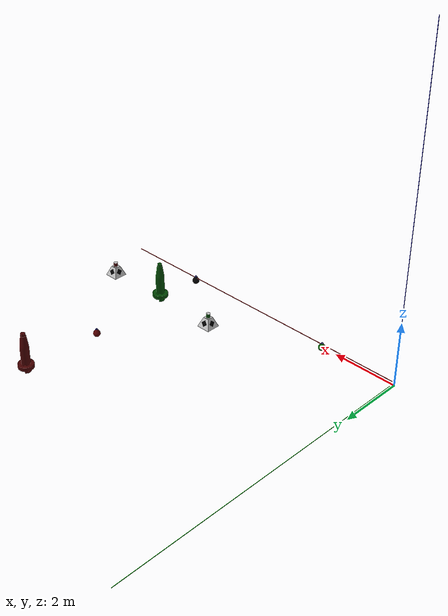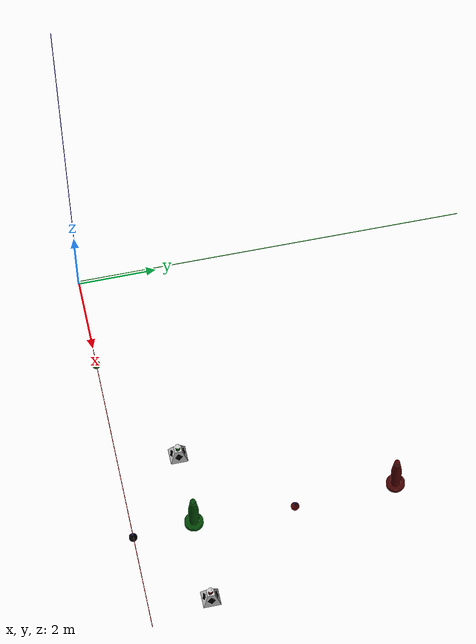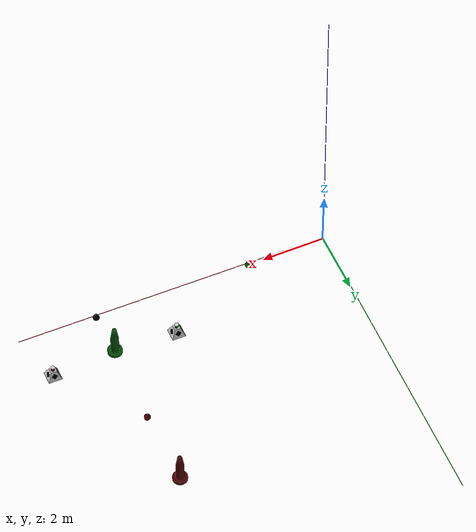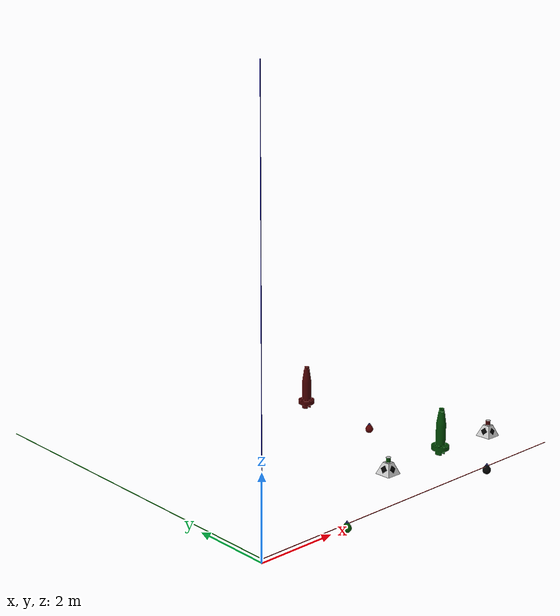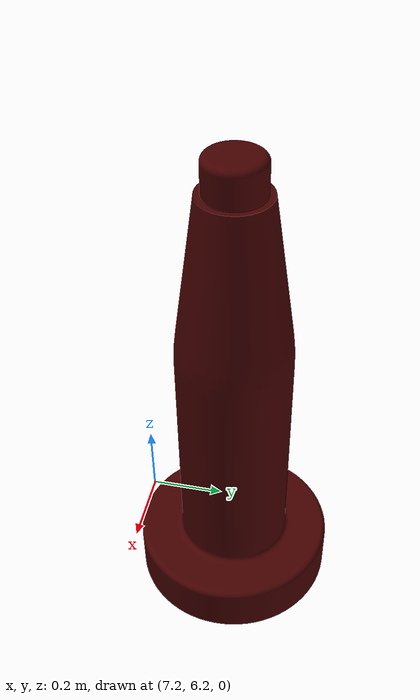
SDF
<sdf version="1.6">
 <world name="aquatonomous_course">
  <plugin filename="gz-sim-physics-system" name="gz::sim::systems::Physics"/>
  <plugin filename="gz-sim-sensors-system" name="gz::sim::systems::Sensors">
   <render_engine>ogre2</render_engine>
   <background_color>0.8 0.8 0.8</background_color>
  </plugin>
  <plugin filename="gz-sim-scene-broadcaster-system" name="gz::sim::systems::SceneBroadcaster"/>
  <plugin filename="gz-sim-user-commands-system" name="gz::sim::systems::UserCommands"/>
  <plugin filename="gz-sim-imu-system" name="gz::sim::systems::Imu"/>
  <scene><ambient>1.0 1.0 1.0</ambient><background>0.8 0.8 0.8</background></scene>
  <light type="directional" name="sun">
   <pose>0 0 10 0 0 0</pose>
   <diffuse>0.8 0.8 0.8 1</diffuse>
   <specular>0.6 0.6 0.6 1</specular>
   <direction>-0.5 0.1 -0.9</direction>
  </light>
  <model name="axes">
   <static>1</static>
   <link name="link">
    <visual name="r">
     <cast_shadows>0</cast_shadows>
     <pose>5 0 0.1 0 0 0</pose>
     <geometry><box><size>10 0.01 0.01</size></box></geometry>
     <material>
      <ambient>1 0 0 1</ambient>
      <diffuse>1 0 0 1</diffuse>
      <emissive>1 0 0 1</emissive>
      <specular>0.5 0.5 0.5 1</specular>
     </material>
    </visual>
    <visual name="g">
     <cast_shadows>0</cast_shadows>
     <pose>0 5 0.1 0 0 0</pose>
     <geometry><box><size>0.01 10 0.01</size></box></geometry>
     <material>
      <ambient>0 1 0 1</ambient>
      <diffuse>0 1 0 1</diffuse>
      <emissive>0 1 0 1</emissive>
      <specular>0.5 0.5 0.5 1</specular>
     </material>
    </visual>
    <visual name="b">
     <cast_shadows>0</cast_shadows>
     <pose>0 0 5.1 0 0 0</pose>
     <geometry><box><size>0.01 0.01 10</size></box></geometry>
     <material>
      <ambient>0 0 1 1</ambient>
      <diffuse>0 0 1 1</diffuse>
      <emissive>0 0 1 1</emissive>
      <specular>0.5 0.5 0.5 1</specular>
     </material>
    </visual>
   </link>
  </model>
  <include><name>green1</name><pose>7.50 1.50 0 0 0 0</pose><uri>model://GreenSurMark</uri></include>
  <include><name>greendes1</name><pose>7.50 0 0 0 0 0</pose><uri>model://BlackRopehold</uri></include>
  <include><name>gregden1</name><pose>5.50 1.50 0 0 0 0</pose><uri>model://ColourIndicatorGreen</uri></include>
  <include><name>greenfsd1</name><pose>9.50 1.50 0 0 0 0</pose><uri>model://ColourIndicatorRed</uri></include>
  <include><name>greesdfndes1</name><pose>7.50 4 0 0 0 0</pose><uri>model://RedRopehold</uri></include>
  <include><name>greeghjndes1</name><pose>2.50 0 0 0 0 0</pose><uri>model://GreenRopehold</uri></include>
  <include><name>green661</name><pose>7.50 6.50 0 0 0 0</pose><uri>model://RedSurMark</uri></include>
 </world>
</sdf>

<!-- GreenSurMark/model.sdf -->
<sdf version='1.6'>
  <model name='Green Surmark Buoy'>
    <static>false</static>
    <plugin
        filename="gz-waves1-hydrodynamics-system"
        name="gz::sim::systems::Hydrodynamics">
    </plugin>
    <link name="base_link">
      <visual name="visual">
        <pose>0 0 0 0 0 0</pose>
        <geometry>
          <mesh>
            <uri>model://GreenSurMark/meshes/GreenSurmark.dae</uri>
            <scale>0.001 0.001 0.001</scale>
          </mesh>
        </geometry>
      </visual>
      <collision name="collision">
        <pose>0 0 0 0 0 0</pose>
        <geometry>
          <sphere>
            <radius>0.25</radius>
          </sphere>
        </geometry>
      </collision>
      <inertial>
        <pose>0 0 0 0 0 0</pose>
        <mass>50</mass>
        <inertia>
          <ixx>0.1636</ixx>
          <ixy>0.0</ixy>
          <ixz>0.0</ixz>
          <iyy>0.1636</iyy>
          <iyz>0.0</iyz>
          <izz>0.1636</izz>
        </inertia>
      </inertial>
    </link>
  </model>
</sdf>

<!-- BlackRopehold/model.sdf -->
<sdf version='1.6'>
  <model name='Black Ropehold Buoy'>
    <static>false</static>
    <plugin
        filename="gz-waves1-hydrodynamics-system"
        name="gz::sim::systems::Hydrodynamics">
    </plugin>
    <link name="base_link">
      <visual name="visual">
        <pose>0 0 0 0 0 0</pose>
        <geometry>
          <mesh>
            <uri>model://BlackRopehold/meshes/BlackRopehold.dae</uri>
            <scale>0.001 0.001 0.001</scale>
          </mesh>
        </geometry>
      </visual>
      <collision name="collision">
        <pose>0 0 0 0 0 0</pose>
        <geometry>
          <sphere>
            <radius>0.25</radius>
          </sphere>
        </geometry>
      </collision>
      <inertial>
        <pose>0 0 0 0 0 0</pose>
        <mass>20</mass>
        <inertia>
          <ixx>0.1636</ixx>
          <ixy>0.0</ixy>
          <ixz>0.0</ixz>
          <iyy>0.1636</iyy>
          <iyz>0.0</iyz>
          <izz>0.1636</izz>
        </inertia>
      </inertial>
    </link>
  </model>
</sdf>

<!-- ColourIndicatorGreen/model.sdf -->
<sdf version='1.6'>
  <model name='Green Colour Indicator'>
    <static>false</static>
    <plugin
        filename="gz-waves1-hydrodynamics-system"
        name="gz::sim::systems::Hydrodynamics">
    </plugin>
    <link name="base_link">
      <visual name="visual">
        <pose>0 0 0 0 0 0</pose>
        <geometry>
          <mesh>
            <uri>model://ColourIndicatorGreen/meshes/ColourIndicatorGreen.dae</uri>
            <scale>0.001 0.001 0.001</scale>
          </mesh>
        </geometry>
      </visual>
      <collision name="collision">
        <pose>0 0 0 0 0 0</pose>
        <geometry>
          <sphere>
            <radius>0.25</radius>
          </sphere>
        </geometry>
      </collision>
      <inertial>
        <pose>0 0 0 0 0 0</pose>
        <mass>20</mass>
        <inertia>
          <ixx>0.1636</ixx>
          <ixy>0.0</ixy>
          <ixz>0.0</ixz>
          <iyy>0.1636</iyy>
          <iyz>0.0</iyz>
          <izz>0.1636</izz>
        </inertia>
      </inertial>
    </link>
  </model>
</sdf>

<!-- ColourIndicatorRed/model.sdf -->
<sdf version='1.6'>
  <model name='Red Colour Indicator'>
    <static>false</static>
    <plugin
        filename="gz-waves1-hydrodynamics-system"
        name="gz::sim::systems::Hydrodynamics">
    </plugin>
    <link name="base_link">
      <visual name="visual">
        <pose>0 0 0 0 0 0</pose>
        <geometry>
          <mesh>
            <uri>model://ColourIndicatorRed/meshes/ColourIndicatorRed.dae</uri>
            <scale>0.001 0.001 0.001</scale>
          </mesh>
        </geometry>
      </visual>
      <collision name="collision">
        <pose>0 0 0 0 0 0</pose>
        <geometry>
          <sphere>
            <radius>0.25</radius>
          </sphere>
        </geometry>
      </collision>
      <inertial>
        <pose>0 0 0 0 0 0</pose>
        <mass>20</mass>
        <inertia>
          <ixx>0.1636</ixx>
          <ixy>0.0</ixy>
          <ixz>0.0</ixz>
          <iyy>0.1636</iyy>
          <iyz>0.0</iyz>
          <izz>0.1636</izz>
        </inertia>
      </inertial>
    </link>
  </model>
</sdf>

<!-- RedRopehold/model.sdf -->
<sdf version='1.6'>
  <model name='Red Ropehold Buoy'>
    <static>false</static>
    <plugin
        filename="gz-waves1-hydrodynamics-system"
        name="gz::sim::systems::Hydrodynamics">
    </plugin>
    <link name="base_link">
      <visual name="visual">
        <pose>0 0 0 0 0 0</pose>
        <geometry>
          <mesh>
            <uri>model://RedRopehold/meshes/RedRopehold.dae</uri>
            <scale>0.001 0.001 0.001</scale>
          </mesh>
        </geometry>
      </visual>
      <collision name="collision">
        <pose>0 0 0 0 0 0</pose>
        <geometry>
          <sphere>
            <radius>0.25</radius>
          </sphere>
        </geometry>
      </collision>
      <inertial>
        <pose>0 0 0 0 0 0</pose>
        <mass>20</mass>
        <inertia>
          <ixx>0.1636</ixx>
          <ixy>0.0</ixy>
          <ixz>0.0</ixz>
          <iyy>0.1636</iyy>
          <iyz>0.0</iyz>
          <izz>0.1636</izz>
        </inertia>
      </inertial>
    </link>
  </model>
</sdf>

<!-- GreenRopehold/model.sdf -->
<sdf version='1.6'>
  <model name='Green Ropehold Buoy'>
    <static>false</static>
    <plugin
        filename="gz-waves1-hydrodynamics-system"
        name="gz::sim::systems::Hydrodynamics">
    </plugin>
    <link name="base_link">
      <visual name="visual">
        <pose>0 0 0 0 0 0</pose>
        <geometry>
          <mesh>
            <uri>model://GreenRopehold/meshes/GreenRopehold.dae</uri>
            <scale>0.001 0.001 0.001</scale>
          </mesh>
        </geometry>
      </visual>
      <collision name="collision">
        <pose>0 0 0 0 0 0</pose>
        <geometry>
          <sphere>
            <radius>0.25</radius>
          </sphere>
        </geometry>
      </collision>
      <inertial>
        <pose>0 0 0 0 0 0</pose>
        <mass>20</mass>
        <inertia>
          <ixx>0.1636</ixx>
          <ixy>0.0</ixy>
          <ixz>0.0</ixz>
          <iyy>0.1636</iyy>
          <iyz>0.0</iyz>
          <izz>0.1636</izz>
        </inertia>
      </inertial>
    </link>
  </model>
</sdf>

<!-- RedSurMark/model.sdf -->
<sdf version='1.6'>
  <model name='Red Surmark Buoy'>
    <static>false</static>
    <plugin
        filename="gz-waves1-hydrodynamics-system"
        name="gz::sim::systems::Hydrodynamics">
    </plugin>
    <link name="base_link">
      <visual name="visual">
        <pose>0 0 0 0 0 0</pose>
        <geometry>
          <mesh>
            <uri>model://RedSurMark/meshes/RedSurmark.dae</uri>
            <scale>0.001 0.001 0.001</scale>
          </mesh>
        </geometry>
      </visual>
      <collision name="collision">
        <pose>0 0 0 0 0 0</pose>
        <geometry>
          <sphere>
            <radius>0.25</radius>
          </sphere>
        </geometry>
      </collision>
      <inertial>
        <pose>0 0 0 0 0 0</pose>
        <mass>50</mass>
        <inertia>
          <ixx>0.1636</ixx>
          <ixy>0.0</ixy>
          <ixz>0.0</ixz>
          <iyy>0.1636</iyy>
          <iyz>0.0</iyz>
          <izz>0.1636</izz>
        </inertia>
      </inertial>
    </link>
  </model>
</sdf>
